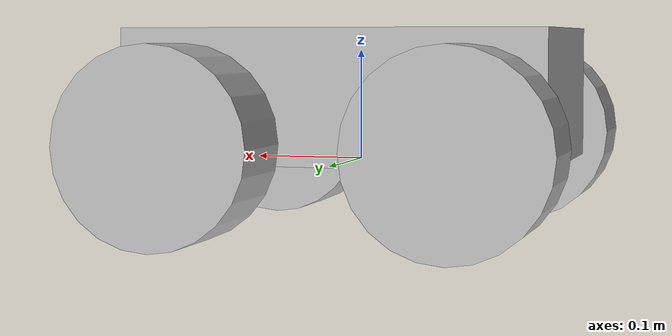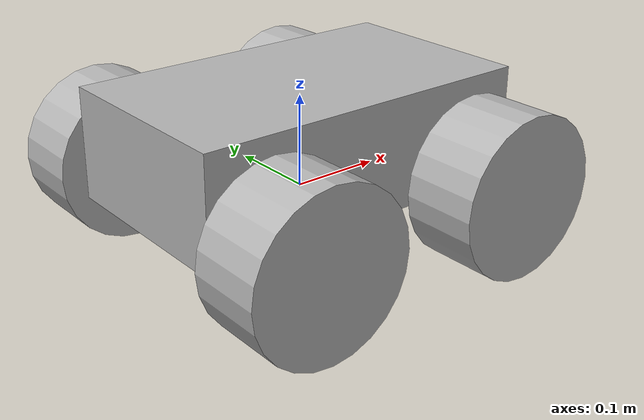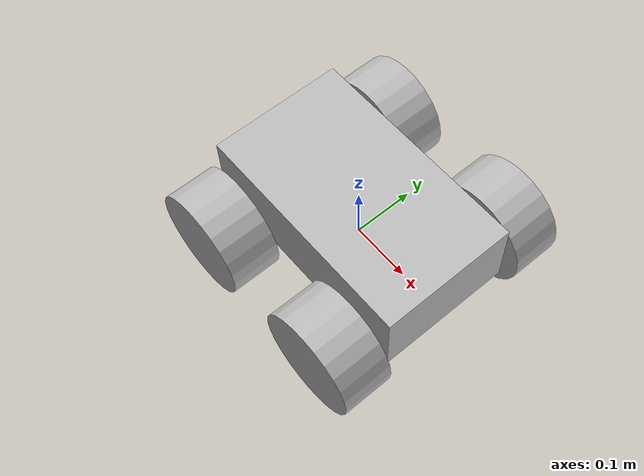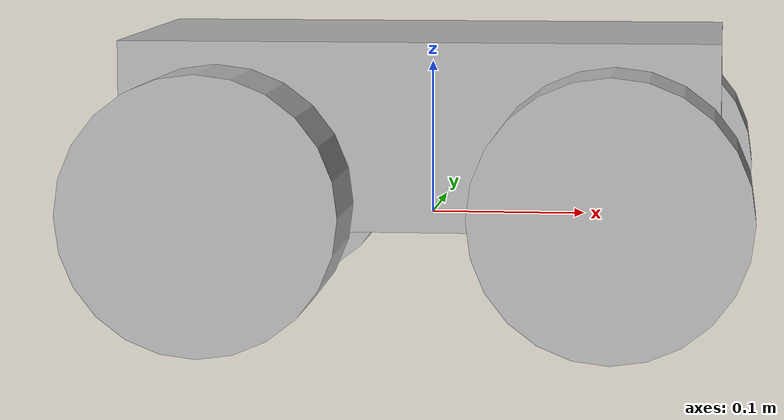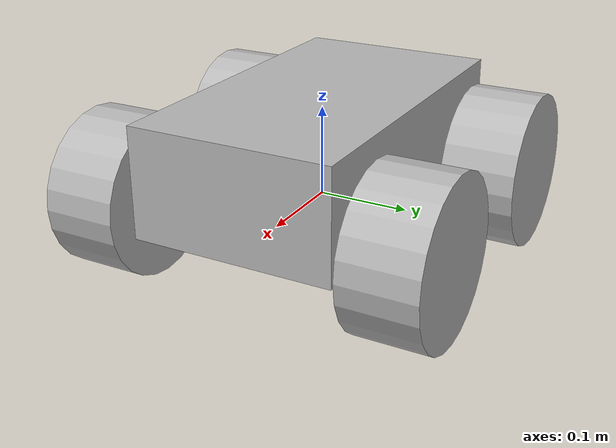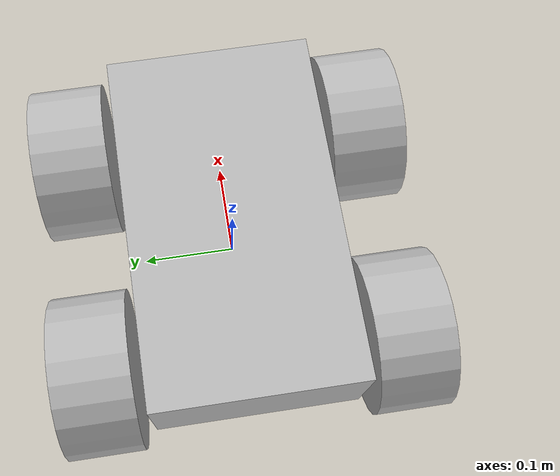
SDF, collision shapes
<?xml version='1.0'?>
<sdf version='1.5'>
  <model name="eduard-offroad">
    <static>false</static>
    <pose>0 0 0 0 0 0</pose>
      <!-- chassis -->
      <link name="chassis">
        <pose>0 0 0 0 0 0</pose>
        <inertial>
          <pose>0 0 0 0 0 0</pose>
          <mass>5.0</mass>
          <inertia>
            <ixx>9.885e-1</ixx>
            <iyy>2.099e0</iyy>
            <izz>1.317e0</izz>
            <ixy>-7.521e-4</ixy>
            <ixz>1.126e-3</ixz>
            <iyz>6.915e-3</iyz>
          </inertia>
        </inertial>
        <visual name="visual">
          <geometry>
            <mesh>
              <uri>model://eduard/mesh/eduard-chassis.dae</uri>
            </mesh>
          </geometry>
        </visual>
        <collision name="collision">
          <pose>0 0 0.06 0 0 0</pose>
          <geometry>
            <box>
              <size>0.38 0.22 0.12</size>
            </box>
          </geometry>
        </collision>
      </link>

      <!-- wheel front left -->
      <link name="wheel_front_left">
        <pose>0.125 0.163 0.02 1.570796327 0 0</pose>
        <inertial>
          <pose>0 0 0 0 0 0</pose>
          <mass>0.3</mass>
          <inertia>
            <ixx>3.0e-5</ixx>
            <iyy>3.0e-5</iyy>
            <izz>5.0e-5</izz>
            <ixy>0</ixy>
            <ixz>0</ixz>
            <iyz>0</iyz>
          </inertia>
        </inertial>
        <visual name="visual">
          <geometry>
            <mesh>
              <uri>model://eduard/mesh/offroad-wheel-eduard.dae</uri>
            </mesh>
          </geometry>
        </visual>
        <collision name="collision">
          <pose>0 0 0 0 0 0</pose>
          <geometry>
            <cylinder>
              <radius>0.0865</radius>
              <length>0.081</length>
            </cylinder>
          </geometry>
          <max_contacts>10</max_contacts>
          <surface>
            <friction>
              <torsional>
                <coefficient>0.9</coefficient>
                <surface_radius>0.0865</surface_radius>
                <use_patch_radius>false</use_patch_radius>
                <ode>
                  <slip>0.02</slip>
                </ode>
              </torsional>
            </friction>
            <contact>
              <ode>
                <min_depth>0.005</min_depth>
              </ode>
            </contact>
          </surface>
        </collision>
      </link>

      <!-- wheel front right -->
      <link name="wheel_front_right">
        <pose>0.125 -0.163 0.02 -1.570796327 0 0</pose>
        <inertial>
          <pose>0 0 0 0 0 0</pose>
          <mass>0.3</mass>
          <inertia>
            <ixx>3.0e-5</ixx>
            <iyy>3.0e-5</iyy>
            <izz>5.0e-5</izz>
            <ixy>0</ixy>
            <ixz>0</ixz>
            <iyz>0</iyz>
          </inertia>
        </inertial>
        <visual name="visual">
          <geometry>
            <mesh>
              <uri>model://eduard/mesh/offroad-wheel-eduard.dae</uri>
            </mesh>
          </geometry>
        </visual>
        <collision name="collision">
          <pose>0 0 0 0 0 0</pose>
          <geometry>
            <cylinder>
              <radius>0.0865</radius>
              <length>0.081</length>
            </cylinder>
          </geometry>
          <max_contacts>10</max_contacts>
          <surface>
            <friction>
              <torsional>
                <coefficient>0.9</coefficient>
                <surface_radius>0.0865</surface_radius>
                <use_patch_radius>false</use_patch_radius>
                <ode>
                  <slip>0.02</slip>
                </ode>
              </torsional>
            </friction>
            <contact>
              <ode>
                <min_depth>0.005</min_depth>
              </ode>
            </contact>
          </surface>
        </collision>
      </link>

      <!-- wheel rear left -->
      <link name="wheel_rear_left">
        <pose>-0.125 0.163 0.02 1.570796327 0 0</pose>
        <inertial>
          <pose>0 0 0 0 0 0</pose>
          <mass>0.3</mass>
          <inertia>
            <ixx>3.0e-5</ixx>
            <iyy>3.0e-5</iyy>
            <izz>5.0e-5</izz>
            <ixy>0</ixy>
            <ixz>0</ixz>
            <iyz>0</iyz>
          </inertia>
        </inertial>
        <visual name="visual">
          <geometry>
            <mesh>
              <uri>model://eduard/mesh/offroad-wheel-eduard.dae</uri>
            </mesh>
          </geometry>
        </visual>
        <collision name="collision">
          <pose>0 0 0 0 0 0</pose>
          <geometry>
            <cylinder>
              <radius>0.0865</radius>
              <length>0.081</length>
            </cylinder>
          </geometry>
          <max_contacts>10</max_contacts>
          <surface>
            <friction>
              <torsional>
                <coefficient>0.9</coefficient>
                <surface_radius>0.0865</surface_radius>
                <use_patch_radius>false</use_patch_radius>
                <ode>
                  <slip>0.02</slip>
                </ode>
              </torsional>
            </friction>
            <contact>
              <ode>
                <min_depth>0.005</min_depth>
              </ode>
            </contact>
          </surface>
        </collision>
      </link>

      <!-- wheel rear right -->
      <link name="wheel_rear_right">
        <pose>-0.125 -0.163 0.02 -1.570796327 0 0</pose>
        <inertial>
          <pose>0 0 0 0 0 0</pose>
          <mass>0.3</mass>
          <inertia>
            <ixx>3.0e-5</ixx>
            <iyy>3.0e-5</iyy>
            <izz>5.0e-5</izz>
            <ixy>0</ixy>
            <ixz>0</ixz>
            <iyz>0</iyz>
          </inertia>
        </inertial>
        <visual name="visual">
          <geometry>
            <mesh>
              <uri>model://eduard/mesh/offroad-wheel-eduard.dae</uri>
            </mesh>
          </geometry>
        </visual>
        <collision name="collision">
          <pose>0 0 0 0 0 0</pose>
          <geometry>
            <cylinder>
              <radius>0.0865</radius>
              <length>0.081</length>
            </cylinder>
          </geometry>
          <max_contacts>10</max_contacts>
          <surface>
            <friction>
              <torsional>
                <coefficient>0.9</coefficient>
                <surface_radius>0.0865</surface_radius>
                <use_patch_radius>false</use_patch_radius>
                <ode>
                  <slip>0.02</slip>
                </ode>
              </torsional>
            </friction>
            <contact>
              <ode>
                <min_depth>0.005</min_depth>
              </ode>
            </contact>
          </surface>
        </collision>
      </link>

      <!-- Joints. -->
      <joint type="revolute" name="axis_front_left">
        <pose>0 0 0 3.141592654 0 0</pose>
        <child>wheel_front_left</child>
        <parent>chassis</parent>
        <axis>
          <xyz>0 0 1</xyz>
        </axis>
      </joint>
      <joint type="revolute" name="axis_front_right">
        <pose>0 0 0 0 0 0</pose>
        <child>wheel_front_right</child>
        <parent>chassis</parent>
        <axis>
          <xyz>0 0 1</xyz>
        </axis>
      </joint>
      <joint type="revolute" name="axis_rear_left">
        <pose>0 0 0 3.141592654 0 0</pose>
        <child>wheel_rear_left</child>
        <parent>chassis</parent>
        <axis>
          <xyz>0 0 1</xyz>
        </axis>
      </joint>
      <joint type="revolute" name="axis_rear_right">
        <pose>0 0 0 0 0 0</pose>
        <child>wheel_rear_right</child>
        <parent>chassis</parent>
        <axis>
          <xyz>0 0 1</xyz>
        </axis>
      </joint>

      <!-- plugins to control robot behavior -->
      <plugin name='skid_steer_drive' filename='libgazebo_ros_diff_drive.so'>
          <!-- Set namespace -->

          <!-- Remap default topics -->

        <!-- Update rate -->
        <update_rate>20</update_rate>

        <!-- Number of wheel pairs -->
        <num_wheel_pairs>2</num_wheel_pairs>

        <!-- wheels0 -->
        <left_joint>axis_front_left</left_joint>
        <right_joint>axis_front_right</right_joint>

        <!-- wheels1-->
        <left_joint>axis_rear_left</left_joint>
        <right_joint>axis_rear_right</right_joint>

        <!-- kinematics -->
        <wheel_separation>0.326</wheel_separation>
        <wheel_separation>0.326</wheel_separation>

        <wheel_diameter>0.173</wheel_diameter>
        <wheel_diameter>0.173</wheel_diameter>

        <!-- limits -->
        <max_wheel_torque>20</max_wheel_torque>
        <max_wheel_acceleration>1.0</max_wheel_acceleration>

        <!-- output -->
        <publish_odom>true</publish_odom>
        <publish_odom_tf>true</publish_odom_tf>
        <publish_wheel_tf>true</publish_wheel_tf>

        <odometry_frame>odom</odometry_frame>
        <robot_base_frame>base_frame</robot_base_frame>
      </plugin>
    </model>
</sdf>
